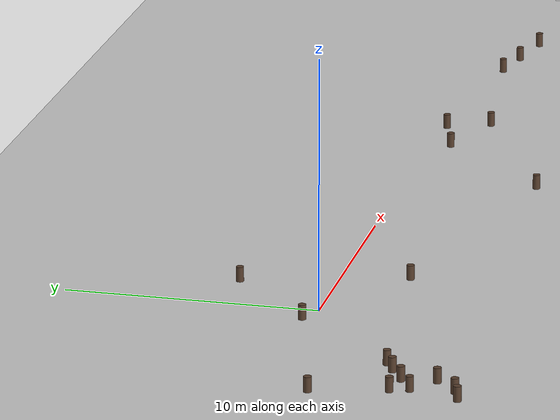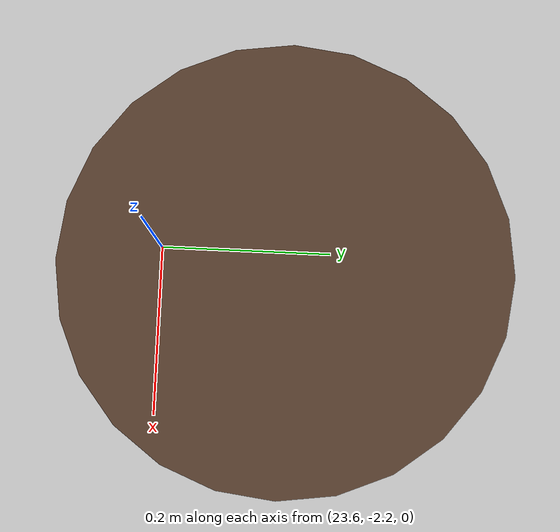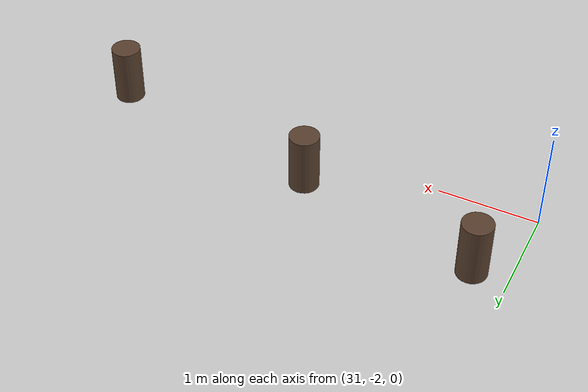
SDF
<?xml version="1.0"?>
<sdf version="1.6">
  <world name="orchard_world">
    <include>
      <uri>model://sun</uri>
    </include>

    <include>
      <uri>model://ground_plane</uri>
    </include>

    <!-- Trees: 19 includes of model://tree_trunk -->
    <include>
      <uri>model://tree_trunk</uri>
      <name>tree_0000</name>
      <pose>-7.889916 -6.956344 0 0 0 0</pose>
    </include>
    <include>
      <uri>model://tree_trunk</uri>
      <name>tree_0001</name>
      <pose>-7.144054 -6.714459 0 0 0 0</pose>
    </include>
    <include>
      <uri>model://tree_trunk</uri>
      <name>tree_0002</name>
      <pose>-6.269038 -5.888447 0 0 0 0</pose>
    </include>
    <include>
      <uri>model://tree_trunk</uri>
      <name>tree_0003</name>
      <pose>16.004457 -5.438119 0 0 0 0</pose>
    </include>
    <include>
      <uri>model://tree_trunk</uri>
      <name>tree_0004</name>
      <pose>-7.320961 -5.077003 0 0 0 0</pose>
    </include>
    <include>
      <uri>model://tree_trunk</uri>
      <name>tree_0005</name>
      <pose>-6.409283 -4.557876 0 0 0 0</pose>
    </include>
    <include>
      <uri>model://tree_trunk</uri>
      <name>tree_0006</name>
      <pose>-7.539594 -4.370453 0 0 0 0</pose>
    </include>
    <include>
      <uri>model://tree_trunk</uri>
      <name>tree_0007</name>
      <pose>-5.574506 -4.061331 0 0 0 0</pose>
    </include>
    <include>
      <uri>model://tree_trunk</uri>
      <name>tree_0008</name>
      <pose>-4.912096 -3.715466 0 0 0 0</pose>
    </include>
    <include>
      <uri>model://tree_trunk</uri>
      <name>tree_0009</name>
      <pose>4.214373 -2.667020 0 0 0 0</pose>
    </include>
    <include>
      <uri>model://tree_trunk</uri>
      <name>tree_0010</name>
      <pose>23.703199 -2.048994 0 0 0 0</pose>
    </include>
    <include>
      <uri>model://tree_trunk</uri>
      <name>tree_0011</name>
      <pose>35.509544 -1.969451 0 0 0 0</pose>
    </include>
    <include>
      <uri>model://tree_trunk</uri>
      <name>tree_0012</name>
      <pose>33.220375 -1.514962 0 0 0 0</pose>
    </include>
    <include>
      <uri>model://tree_trunk</uri>
      <name>tree_0013</name>
      <pose>-8.217902 -1.484294 0 0 0 0</pose>
    </include>
    <include>
      <uri>model://tree_trunk</uri>
      <name>tree_0014</name>
      <pose>31.343132 -1.111986 0 0 0 0</pose>
    </include>
    <include>
      <uri>model://tree_trunk</uri>
      <name>tree_0015</name>
      <pose>20.541403 -0.935777 0 0 0 0</pose>
    </include>
    <include>
      <uri>model://tree_trunk</uri>
      <name>tree_0016</name>
      <pose>22.994465 -0.278452 0 0 0 0</pose>
    </include>
    <include>
      <uri>model://tree_trunk</uri>
      <name>tree_0017</name>
      <pose>-0.997346 0.417450 0 0 0 0</pose>
    </include>
    <include>
      <uri>model://tree_trunk</uri>
      <name>tree_0018</name>
      <pose>2.511365 3.711839 0 0 0 0</pose>
    </include>
  </world>
</sdf>

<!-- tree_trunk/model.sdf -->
<sdf version="1.6">
  <model name="tree_trunk">
    <static>true</static>
    <link name="link">
      <collision name="trunk_collision">
        <pose>0 0 0.30 0 0 0</pose>
        <geometry>
          <cylinder>
            <radius>0.15</radius>
            <length>0.60</length>
          </cylinder>
        </geometry>
      </collision>
      <visual name="trunk_visual">
        <pose>0 0 0.30 0 0 0</pose>
        <geometry>
          <cylinder>
            <radius>0.15</radius>
            <length>0.60</length>
          </cylinder>
        </geometry>
        <material>
          <ambient>0.25 0.18 0.12 1</ambient>
          <diffuse>0.35 0.25 0.18 1</diffuse>
        </material>
      </visual>
    </link>
  </model>
</sdf>
